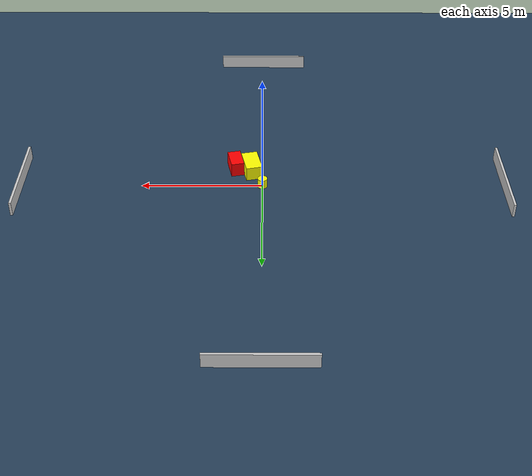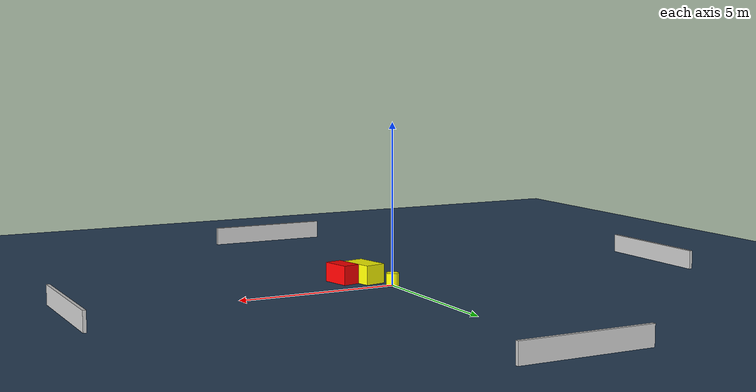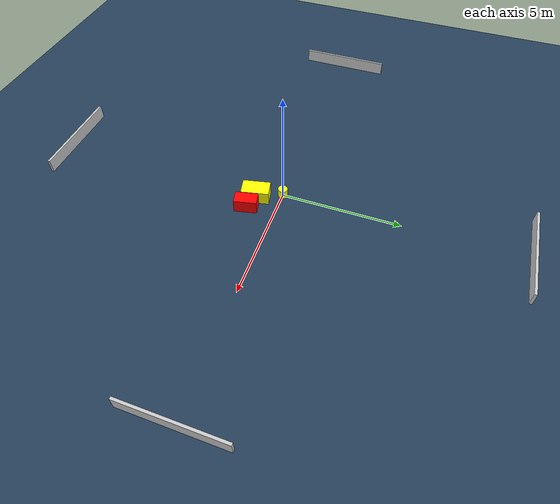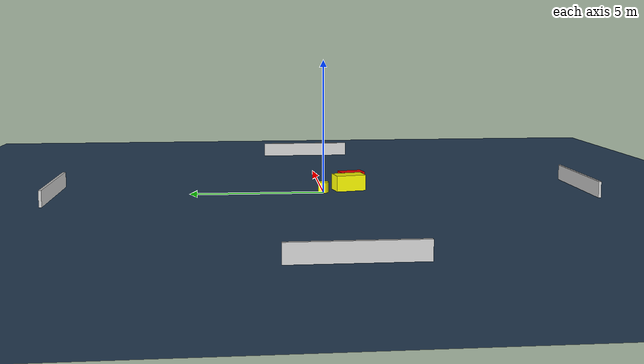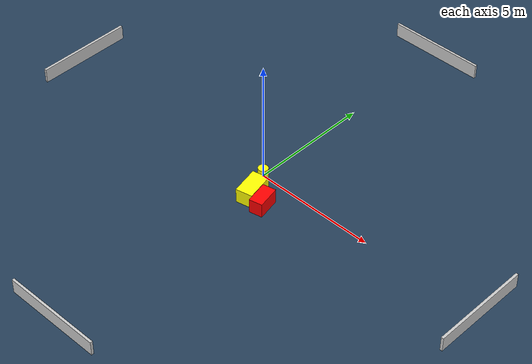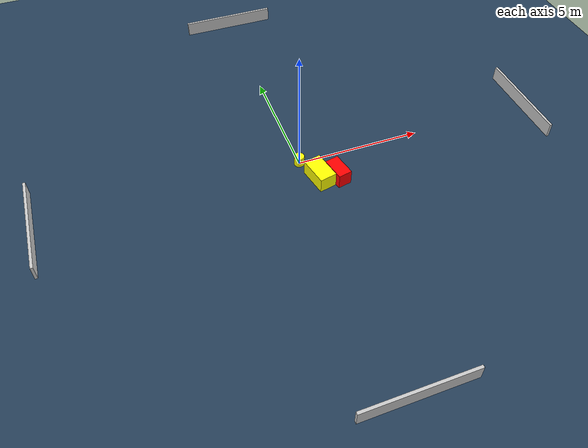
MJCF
<?xml version="1.0" ?>
<mujoco model="generated_environment">
  <option timestep="0.01" integrator="RK4" cone="elliptic"/>
  <default>
    <geom density="1"/>
  </default>
  <asset>
    <texture builtin="gradient" height="3072" name="skybox" rgb1="0.3 0.5 0.7" rgb2="0 0 0" type="skybox" width="512"/>
    <texture builtin="checker" height="300" name="groundplane" rgb1="0.2 0.3 0.4" rgb2="0.1 0.2 0.3" type="2d" width="300"/>
    <material name="groundplane" reflectance="0.2" texrepeat="5 5" texture="groundplane"/>
  </asset>
  <worldbody>
    <light dir="0 0 -1" directional="true" pos="0 0 1.5"/>
    <geom condim="3" friction="0.5 0.005 0.001" material="groundplane" name="floor" pos="0 0 0" size="0 0 0.05" type="plane"/>
    <body name="walls">
      <geom name="wall_1" condim="4" pos="-10.0 0.0 0.3" rgba="0.800000011920929 0.800000011920929 0.800000011920929 1.0" size="0.05 2.0 0.3" type="box"/>
      <geom name="wall_2" condim="4" pos="10.0 0.0 0.3" rgba="0.800000011920929 0.800000011920929 0.800000011920929 1.0" size="0.05 2.0 0.3" type="box"/>
      <geom name="wall_3" condim="4" pos="0.0 -10.0 0.3" rgba="0.800000011920929 0.800000011920929 0.800000011920929 1.0" size="2.0 0.05 0.3" type="box"/>
      <geom name="wall_4" condim="4" pos="0.0 10.0 0.3" rgba="0.800000011920929 0.800000011920929 0.800000011920929 1.0" size="2.0 0.05 0.3" type="box"/>
    </body>
    <body name="robot">
      <joint name="joint_x" type="slide" pos="0 0 0" axis="1 0 0"/>
      <joint name="joint_y" type="slide" pos="0 0 0" axis="0 1 0"/>
      <geom name="robot" type="cylinder" pos="0.0 0.0 0.2" size="0.2 0.2 0.0" mass="5.0" friction="1.0 0.005 0.0001" condim="4" rgba="1.0 1.0 0.0 1.0"/>
    </body>
    <body name="obstacle_1_movable">
      <geom name="obstacle_1_movable" condim="4" pos="0.45762761454558837 -1.0285567527413872 0.3" euler="0 0 282.03920944674303" friction="0.0 0.005 0.001" rgba="1.0 1.0 0.0 1.0" size="0.576062032857356 0.33798919125006494 0.3" type="box" mass="0.1"/>
      <joint type="free"/>
    </body>
    <body name="obstacle_2_static">
      <geom name="obstacle_2_static" condim="4" pos="1.1272794920965243 -1.1972446919136415 0.3" euler="0 0 102.01414997043963" friction="0.0 0.005 0.001" rgba="1.0 0.0 0.0 1.0" size="0.47125684882175517 0.2706578228068838 0.3" type="box"/>
    </body>
  </worldbody>
  <actuator>
    <motor name="actuator_x" joint="joint_x" gear="1" ctrlrange="-1 1"/>
    <motor name="actuator_y" joint="joint_y" gear="1" ctrlrange="-1 1"/>
  </actuator>
</mujoco>
